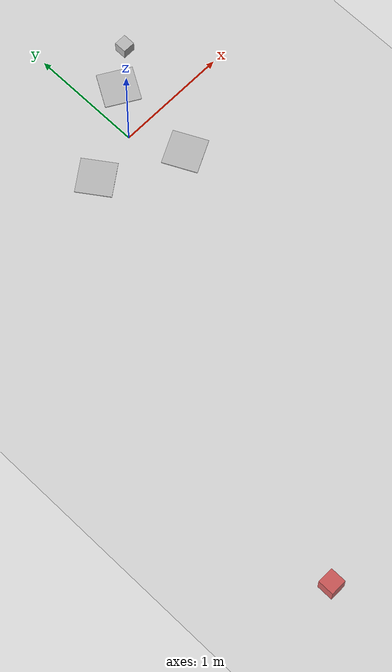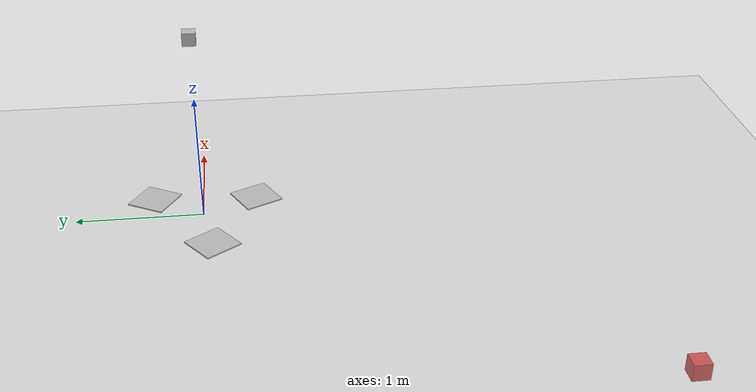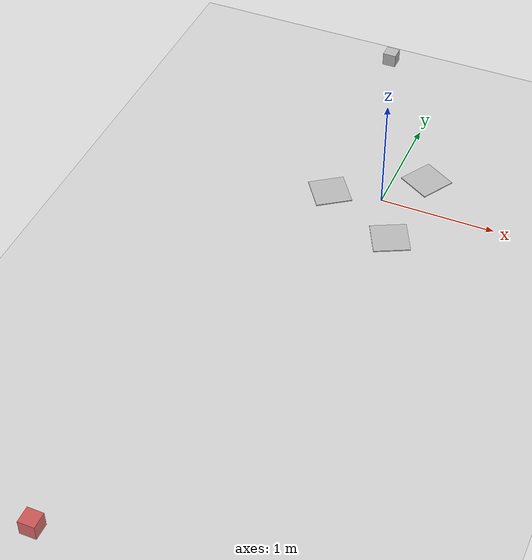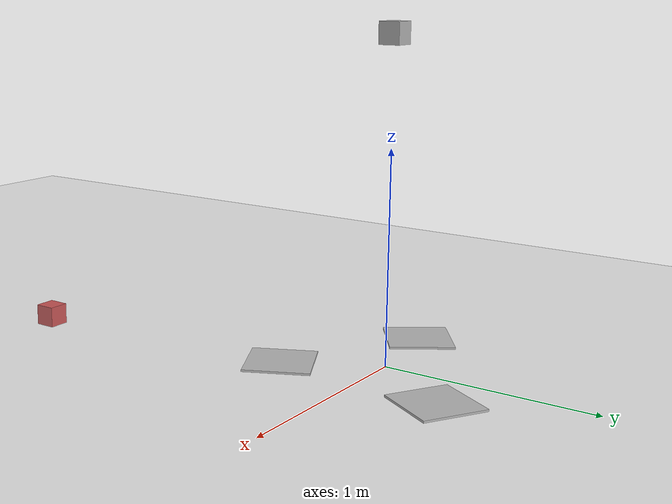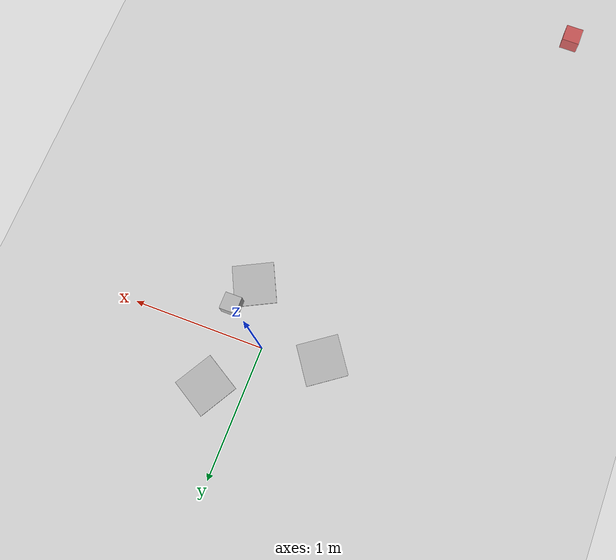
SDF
<sdf version="1.6">
 <world name="default">
  <light name="sun" type="directional">
   <pose>0 0 10 0 -0 0</pose>
   <diffuse>0.8 0.8 0.8 1</diffuse>
   <specular>0.2 0.2 0.2 1</specular>
   <attenuation>
    <range>1000</range>
    <constant>0.9</constant>
    <linear>0.01</linear>
    <quadratic>0.001</quadratic>
   </attenuation>
   <direction>-0.5 0.1 -0.9</direction>
  </light>
  <model name="ground_plane">
   <static>1</static>
   <link name="link">
    <collision name="collision">
     <geometry><plane><normal>0 0 1</normal><size>100 100</size></plane></geometry>
     <surface>
      <contact><collide_bitmask>65535</collide_bitmask></contact>
      <friction><ode><mu>100</mu><mu2>50</mu2></ode></friction>
     </surface>
    </collision>
    <visual name="visual">
     <cast_shadows>0</cast_shadows>
     <geometry><plane><normal>0 0 1</normal><size>100 100</size></plane></geometry>
     <material>
      <script><uri>file://media/materials/scripts/gazebo.material</uri><name>Gazebo/Grey</name></script>
     </material>
    </visual>
   </link>
  </model>
  <gravity>0 0 -9.8</gravity>
  <magnetic_field>6e-06 2.3e-05 -4.2e-05</magnetic_field>
  <atmosphere type="adiabatic"/>
  <physics name="default_physics" default="0" type="ode">
   <max_step_size>0.001</max_step_size>
   <real_time_factor>1</real_time_factor>
   <real_time_update_rate>1000</real_time_update_rate>
  </physics>
  <scene><ambient>0.4 0.4 0.4 1</ambient><background>0.7 0.7 0.7 1</background><shadows>1</shadows></scene>
  <audio><device>default</device></audio>
  <spherical_coordinates>
   <surface_model>EARTH_WGS84</surface_model>
   <latitude_deg>0</latitude_deg>
   <longitude_deg>0</longitude_deg>
   <elevation>0</elevation>
   <heading_deg>0</heading_deg>
  </spherical_coordinates>
  <model name="box">
   <pose>-1.4194 -3.66566 -0.765519 -1e-06 0 0</pose>
   <plugin name="model_location" filename="libmodel_location.so"/>
   <link name="link">
    <inertial>
     <mass>1</mass>
     <inertia><ixx>0.145833</ixx><ixy>0</ixy><ixz>0</ixz><iyy>0.145833</iyy><iyz>0</iyz><izz>0.125</izz></inertia>
    </inertial>
    <visual name="visual">
     <geometry><box><size>0.15 0.15 0.15</size></box></geometry>
     <material>
      <script><name>Gazebo/Red</name><uri>file://media/materials/scripts/gazebo.material</uri></script>
     </material>
    </visual>
    <gravity>0</gravity>
   </link>
  </model>
  <model name="camera_0">
   <pose>0 0 1.5 3.14159 1.57079 3.14159</pose>
   <plugin name="model_location" filename="libmodel_location.so"><update_rate>100</update_rate></plugin>
   <link name="camera_0::link">
    <inertial>
     <mass>0.1</mass>
     <inertia>
      <ixx>0.000166667</ixx>
      <iyy>0.000166667</iyy>
      <izz>0.000166667</izz>
      <ixy>0</ixy>
      <ixz>0</ixz>
      <iyz>0</iyz>
     </inertia>
    </inertial>
    <collision name="collision"><geometry><box><size>0.1 0.1 0.1</size></box></geometry></collision>
    <visual name="visual"><geometry><box><size>0.1 0.1 0.1</size></box></geometry></visual>
    <sensor name="camera" type="camera">
     <camera name="__default__">
      <horizontal_fov>1.047</horizontal_fov>
      <image><width>640</width><height>640</height></image>
      <clip><near>0.1</near><far>100</far></clip>
     </camera>
     <always_on>1</always_on>
     <update_rate>30</update_rate>
     <visualize>1</visualize>
    </sensor>
    <gravity>0</gravity>
   </link>
  </model>
  <model name="ar_diamond_0">
   <static>1</static>
   <pose>0.274605 0.392839 0.005 0 0 -0.531324</pose>
   <plugin name="model_location" filename="libmodel_location.so"/>
   <link name="link">
    <collision name="collision"><geometry><box><size>0.3125 0.3125 0.01</size></box></geometry></collision>
    <visual name="visual">
     <cast_shadows>0</cast_shadows>
     <geometry><box><size>0.3125 0.3125 0.01</size></box></geometry>
     <material>
      <script>
       <uri>model://aruco_diamond1234/materials/scripts</uri>
       <uri>model://aruco_diamond1234/materials/textures</uri>
       <name>ar/diamond0</name>
      </script>
     </material>
    </visual>
   </link>
  </model>
  <model name="ar_diamond_4">
   <static>1</static>
   <pose>-0.447034 -0.070605 0.005 0 -0 0.61704</pose>
   <plugin name="model_location" filename="libmodel_location.so"/>
   <link name="link">
    <collision name="collision"><geometry><box><size>0.3125 0.3125 0.01</size></box></geometry></collision>
    <visual name="visual">
     <cast_shadows>0</cast_shadows>
     <geometry><box><size>0.3125 0.3125 0.01</size></box></geometry>
     <material>
      <script>
       <uri>model://aruco_diamond1234/materials/scripts</uri>
       <uri>model://aruco_diamond1234/materials/textures</uri>
       <name>ar/diamond4</name>
      </script>
     </material>
    </visual>
   </link>
  </model>
  <model name="ar_diamond_8">
   <static>1</static>
   <pose>0.231686 -0.421243 0.005 0 -0 0.46269</pose>
   <plugin name="model_location" filename="libmodel_location.so"/>
   <link name="link">
    <collision name="collision"><geometry><box><size>0.3125 0.3125 0.01</size></box></geometry></collision>
    <visual name="visual">
     <cast_shadows>0</cast_shadows>
     <geometry><box><size>0.3125 0.3125 0.01</size></box></geometry>
     <material>
      <script>
       <uri>model://aruco_diamond1234/materials/scripts</uri>
       <uri>model://aruco_diamond1234/materials/textures</uri>
       <name>ar/diamond8</name>
      </script>
     </material>
    </visual>
   </link>
  </model>
 </world>
</sdf>
